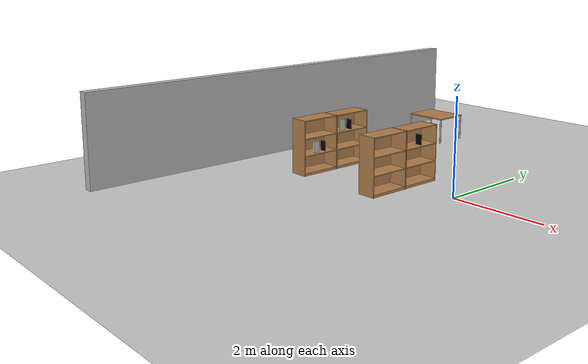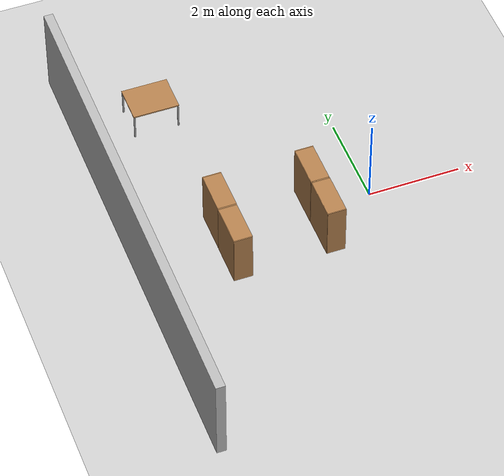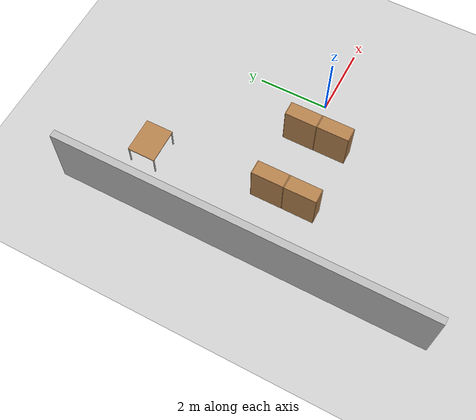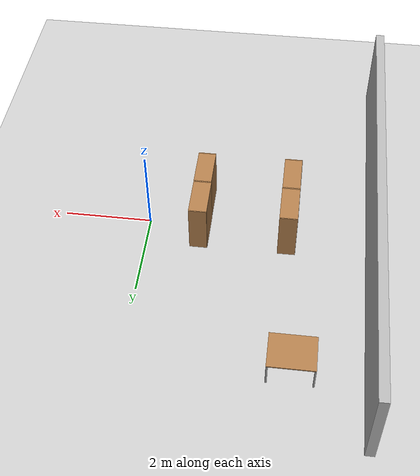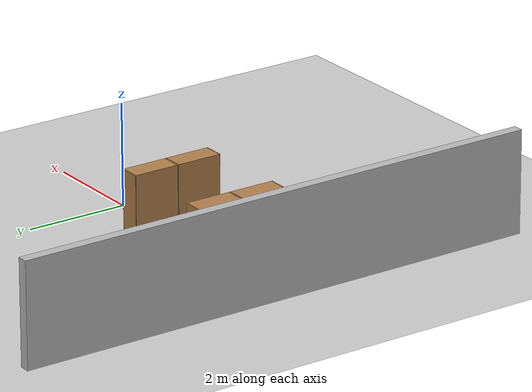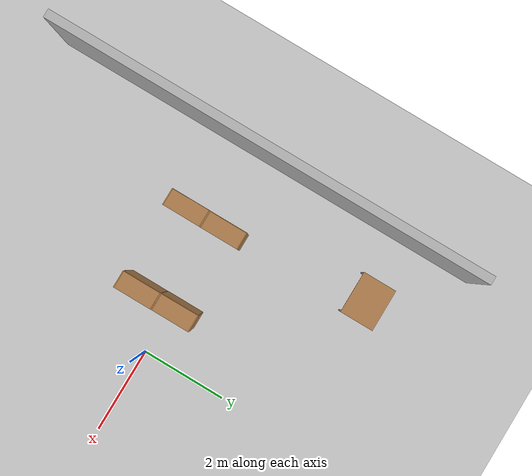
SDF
<sdf version="1.7">
 <world name="default">
  <model name="ground_plane">
   <static>1</static>
   <link name="link">
    <collision name="collision">
     <geometry><plane><normal>0 0 1</normal><size>100 100</size></plane></geometry>
     <surface><friction><ode><mu>100</mu><mu2>50</mu2></ode></friction></surface>
    </collision>
    <visual name="visual">
     <cast_shadows>0</cast_shadows>
     <geometry><plane><normal>0 0 1</normal><size>100 100</size></plane></geometry>
     <material>
      <script><uri>file://media/materials/scripts/gazebo.material</uri><name>Gazebo/Grey</name></script>
     </material>
    </visual>
   </link>
  </model>
  <model name="bookshelf_clone_0">
   <static>1</static>
   <link name="link">
    <inertial><mass>1</mass></inertial>
    <collision name="back">
     <pose>0 0.005 0.6 0 -0 0</pose>
     <geometry><box><size>0.9 0.01 1.2</size></box></geometry>
    </collision>
    <visual name="visual1">
     <pose>0 0.005 0.6 0 -0 0</pose>
     <geometry><box><size>0.9 0.01 1.2</size></box></geometry>
     <material>
      <script><uri>file://media/materials/scripts/gazebo.material</uri><name>Gazebo/Wood</name></script>
     </material>
    </visual>
    <collision name="left_side">
     <pose>0.45 -0.195 0.6 0 -0 0</pose>
     <geometry><box><size>0.02 0.4 1.2</size></box></geometry>
    </collision>
    <visual name="visual2">
     <pose>0.45 -0.195 0.6 0 -0 0</pose>
     <geometry><box><size>0.02 0.4 1.2</size></box></geometry>
     <material>
      <script><uri>file://media/materials/scripts/gazebo.material</uri><name>Gazebo/Wood</name></script>
     </material>
    </visual>
    <collision name="right_side">
     <pose>-0.45 -0.195 0.6 0 -0 0</pose>
     <geometry><box><size>0.02 0.4 1.2</size></box></geometry>
    </collision>
    <visual name="visual3">
     <pose>-0.45 -0.195 0.6 0 -0 0</pose>
     <geometry><box><size>0.02 0.4 1.2</size></box></geometry>
     <material>
      <script><uri>file://media/materials/scripts/gazebo.material</uri><name>Gazebo/Wood</name></script>
     </material>
    </visual>
    <collision name="bottom">
     <pose>0 -0.195 0.03 0 -0 0</pose>
     <geometry><box><size>0.88 0.4 0.06</size></box></geometry>
    </collision>
    <visual name="visual4">
     <pose>0 -0.195 0.03 0 -0 0</pose>
     <geometry><box><size>0.88 0.4 0.06</size></box></geometry>
     <material>
      <script><uri>file://media/materials/scripts/gazebo.material</uri><name>Gazebo/Wood</name></script>
     </material>
    </visual>
    <collision name="top">
     <pose>0 -0.195 1.19 0 -0 0</pose>
     <geometry><box><size>0.88 0.4 0.02</size></box></geometry>
    </collision>
    <visual name="visual5">
     <pose>0 -0.195 1.19 0 -0 0</pose>
     <geometry><box><size>0.88 0.4 0.02</size></box></geometry>
     <material>
      <script><uri>file://media/materials/scripts/gazebo.material</uri><name>Gazebo/Wood</name></script>
     </material>
    </visual>
    <collision name="low_shelf">
     <pose>0 -0.195 0.43 0 -0 0</pose>
     <geometry><box><size>0.88 0.4 0.02</size></box></geometry>
    </collision>
    <visual name="visual6">
     <pose>0 -0.195 0.43 0 -0 0</pose>
     <geometry><box><size>0.88 0.4 0.02</size></box></geometry>
     <material>
      <script><uri>file://media/materials/scripts/gazebo.material</uri><name>Gazebo/Wood</name></script>
     </material>
    </visual>
    <collision name="high_shelf">
     <pose>0 -0.195 0.8 0 -0 0</pose>
     <geometry><box><size>0.88 0.4 0.02</size></box></geometry>
    </collision>
    <visual name="visual7">
     <pose>0 -0.195 0.8 0 -0 0</pose>
     <geometry><box><size>0.88 0.4 0.02</size></box></geometry>
     <material>
      <script><uri>file://media/materials/scripts/gazebo.material</uri><name>Gazebo/Wood</name></script>
     </material>
    </visual>
   </link>
   <pose>-3.40087 -0.738465 0 0 -0 1.57111</pose>
  </model>
  <model name="bookshelf_clone_1">
   <static>1</static>
   <link name="link">
    <inertial><mass>1</mass></inertial>
    <collision name="back">
     <pose>0 0.005 0.6 0 -0 0</pose>
     <geometry><box><size>0.9 0.01 1.2</size></box></geometry>
    </collision>
    <visual name="visual1">
     <pose>0 0.005 0.6 0 -0 0</pose>
     <geometry><box><size>0.9 0.01 1.2</size></box></geometry>
     <material>
      <script><uri>file://media/materials/scripts/gazebo.material</uri><name>Gazebo/Wood</name></script>
     </material>
    </visual>
    <collision name="left_side">
     <pose>0.45 -0.195 0.6 0 -0 0</pose>
     <geometry><box><size>0.02 0.4 1.2</size></box></geometry>
    </collision>
    <visual name="visual2">
     <pose>0.45 -0.195 0.6 0 -0 0</pose>
     <geometry><box><size>0.02 0.4 1.2</size></box></geometry>
     <material>
      <script><uri>file://media/materials/scripts/gazebo.material</uri><name>Gazebo/Wood</name></script>
     </material>
    </visual>
    <collision name="right_side">
     <pose>-0.45 -0.195 0.6 0 -0 0</pose>
     <geometry><box><size>0.02 0.4 1.2</size></box></geometry>
    </collision>
    <visual name="visual3">
     <pose>-0.45 -0.195 0.6 0 -0 0</pose>
     <geometry><box><size>0.02 0.4 1.2</size></box></geometry>
     <material>
      <script><uri>file://media/materials/scripts/gazebo.material</uri><name>Gazebo/Wood</name></script>
     </material>
    </visual>
    <collision name="bottom">
     <pose>0 -0.195 0.03 0 -0 0</pose>
     <geometry><box><size>0.88 0.4 0.06</size></box></geometry>
    </collision>
    <visual name="visual4">
     <pose>0 -0.195 0.03 0 -0 0</pose>
     <geometry><box><size>0.88 0.4 0.06</size></box></geometry>
     <material>
      <script><uri>file://media/materials/scripts/gazebo.material</uri><name>Gazebo/Wood</name></script>
     </material>
    </visual>
    <collision name="top">
     <pose>0 -0.195 1.19 0 -0 0</pose>
     <geometry><box><size>0.88 0.4 0.02</size></box></geometry>
    </collision>
    <visual name="visual5">
     <pose>0 -0.195 1.19 0 -0 0</pose>
     <geometry><box><size>0.88 0.4 0.02</size></box></geometry>
     <material>
      <script><uri>file://media/materials/scripts/gazebo.material</uri><name>Gazebo/Wood</name></script>
     </material>
    </visual>
    <collision name="low_shelf">
     <pose>0 -0.195 0.43 0 -0 0</pose>
     <geometry><box><size>0.88 0.4 0.02</size></box></geometry>
    </collision>
    <visual name="visual6">
     <pose>0 -0.195 0.43 0 -0 0</pose>
     <geometry><box><size>0.88 0.4 0.02</size></box></geometry>
     <material>
      <script><uri>file://media/materials/scripts/gazebo.material</uri><name>Gazebo/Wood</name></script>
     </material>
    </visual>
    <collision name="high_shelf">
     <pose>0 -0.195 0.8 0 -0 0</pose>
     <geometry><box><size>0.88 0.4 0.02</size></box></geometry>
    </collision>
    <visual name="visual7">
     <pose>0 -0.195 0.8 0 -0 0</pose>
     <geometry><box><size>0.88 0.4 0.02</size></box></geometry>
     <material>
      <script><uri>file://media/materials/scripts/gazebo.material</uri><name>Gazebo/Wood</name></script>
     </material>
    </visual>
   </link>
   <pose>-3.39929 0.18163 0 0 -0 1.57111</pose>
  </model>
  <model name="bookshelf_clone_4">
   <static>1</static>
   <link name="link">
    <inertial><mass>1</mass></inertial>
    <collision name="back">
     <pose>0 0.005 0.6 0 -0 0</pose>
     <geometry><box><size>0.9 0.01 1.2</size></box></geometry>
    </collision>
    <visual name="visual1">
     <pose>0 0.005 0.6 0 -0 0</pose>
     <geometry><box><size>0.9 0.01 1.2</size></box></geometry>
     <material>
      <script><uri>file://media/materials/scripts/gazebo.material</uri><name>Gazebo/Wood</name></script>
     </material>
    </visual>
    <collision name="left_side">
     <pose>0.45 -0.195 0.6 0 -0 0</pose>
     <geometry><box><size>0.02 0.4 1.2</size></box></geometry>
    </collision>
    <visual name="visual2">
     <pose>0.45 -0.195 0.6 0 -0 0</pose>
     <geometry><box><size>0.02 0.4 1.2</size></box></geometry>
     <material>
      <script><uri>file://media/materials/scripts/gazebo.material</uri><name>Gazebo/Wood</name></script>
     </material>
    </visual>
    <collision name="right_side">
     <pose>-0.45 -0.195 0.6 0 -0 0</pose>
     <geometry><box><size>0.02 0.4 1.2</size></box></geometry>
    </collision>
    <visual name="visual3">
     <pose>-0.45 -0.195 0.6 0 -0 0</pose>
     <geometry><box><size>0.02 0.4 1.2</size></box></geometry>
     <material>
      <script><uri>file://media/materials/scripts/gazebo.material</uri><name>Gazebo/Wood</name></script>
     </material>
    </visual>
    <collision name="bottom">
     <pose>0 -0.195 0.03 0 -0 0</pose>
     <geometry><box><size>0.88 0.4 0.06</size></box></geometry>
    </collision>
    <visual name="visual4">
     <pose>0 -0.195 0.03 0 -0 0</pose>
     <geometry><box><size>0.88 0.4 0.06</size></box></geometry>
     <material>
      <script><uri>file://media/materials/scripts/gazebo.material</uri><name>Gazebo/Wood</name></script>
     </material>
    </visual>
    <collision name="top">
     <pose>0 -0.195 1.19 0 -0 0</pose>
     <geometry><box><size>0.88 0.4 0.02</size></box></geometry>
    </collision>
    <visual name="visual5">
     <pose>0 -0.195 1.19 0 -0 0</pose>
     <geometry><box><size>0.88 0.4 0.02</size></box></geometry>
     <material>
      <script><uri>file://media/materials/scripts/gazebo.material</uri><name>Gazebo/Wood</name></script>
     </material>
    </visual>
    <collision name="low_shelf">
     <pose>0 -0.195 0.43 0 -0 0</pose>
     <geometry><box><size>0.88 0.4 0.02</size></box></geometry>
    </collision>
    <visual name="visual6">
     <pose>0 -0.195 0.43 0 -0 0</pose>
     <geometry><box><size>0.88 0.4 0.02</size></box></geometry>
     <material>
      <script><uri>file://media/materials/scripts/gazebo.material</uri><name>Gazebo/Wood</name></script>
     </material>
    </visual>
    <collision name="high_shelf">
     <pose>0 -0.195 0.8 0 -0 0</pose>
     <geometry><box><size>0.88 0.4 0.02</size></box></geometry>
    </collision>
    <visual name="visual7">
     <pose>0 -0.195 0.8 0 -0 0</pose>
     <geometry><box><size>0.88 0.4 0.02</size></box></geometry>
     <material>
      <script><uri>file://media/materials/scripts/gazebo.material</uri><name>Gazebo/Wood</name></script>
     </material>
    </visual>
   </link>
   <pose>-1.39871 -0.721952 0 0 -0 1.57111</pose>
  </model>
  <model name="bookshelf_clone_5">
   <static>1</static>
   <link name="link">
    <inertial><mass>1</mass></inertial>
    <collision name="back">
     <pose>0 0.005 0.6 0 -0 0</pose>
     <geometry><box><size>0.9 0.01 1.2</size></box></geometry>
    </collision>
    <visual name="visual1">
     <pose>0 0.005 0.6 0 -0 0</pose>
     <geometry><box><size>0.9 0.01 1.2</size></box></geometry>
     <material>
      <script><uri>file://media/materials/scripts/gazebo.material</uri><name>Gazebo/Wood</name></script>
     </material>
    </visual>
    <collision name="left_side">
     <pose>0.45 -0.195 0.6 0 -0 0</pose>
     <geometry><box><size>0.02 0.4 1.2</size></box></geometry>
    </collision>
    <visual name="visual2">
     <pose>0.45 -0.195 0.6 0 -0 0</pose>
     <geometry><box><size>0.02 0.4 1.2</size></box></geometry>
     <material>
      <script><uri>file://media/materials/scripts/gazebo.material</uri><name>Gazebo/Wood</name></script>
     </material>
    </visual>
    <collision name="right_side">
     <pose>-0.45 -0.195 0.6 0 -0 0</pose>
     <geometry><box><size>0.02 0.4 1.2</size></box></geometry>
    </collision>
    <visual name="visual3">
     <pose>-0.45 -0.195 0.6 0 -0 0</pose>
     <geometry><box><size>0.02 0.4 1.2</size></box></geometry>
     <material>
      <script><uri>file://media/materials/scripts/gazebo.material</uri><name>Gazebo/Wood</name></script>
     </material>
    </visual>
    <collision name="bottom">
     <pose>0 -0.195 0.03 0 -0 0</pose>
     <geometry><box><size>0.88 0.4 0.06</size></box></geometry>
    </collision>
    <visual name="visual4">
     <pose>0 -0.195 0.03 0 -0 0</pose>
     <geometry><box><size>0.88 0.4 0.06</size></box></geometry>
     <material>
      <script><uri>file://media/materials/scripts/gazebo.material</uri><name>Gazebo/Wood</name></script>
     </material>
    </visual>
    <collision name="top">
     <pose>0 -0.195 1.19 0 -0 0</pose>
     <geometry><box><size>0.88 0.4 0.02</size></box></geometry>
    </collision>
    <visual name="visual5">
     <pose>0 -0.195 1.19 0 -0 0</pose>
     <geometry><box><size>0.88 0.4 0.02</size></box></geometry>
     <material>
      <script><uri>file://media/materials/scripts/gazebo.material</uri><name>Gazebo/Wood</name></script>
     </material>
    </visual>
    <collision name="low_shelf">
     <pose>0 -0.195 0.43 0 -0 0</pose>
     <geometry><box><size>0.88 0.4 0.02</size></box></geometry>
    </collision>
    <visual name="visual6">
     <pose>0 -0.195 0.43 0 -0 0</pose>
     <geometry><box><size>0.88 0.4 0.02</size></box></geometry>
     <material>
      <script><uri>file://media/materials/scripts/gazebo.material</uri><name>Gazebo/Wood</name></script>
     </material>
    </visual>
    <collision name="high_shelf">
     <pose>0 -0.195 0.8 0 -0 0</pose>
     <geometry><box><size>0.88 0.4 0.02</size></box></geometry>
    </collision>
    <visual name="visual7">
     <pose>0 -0.195 0.8 0 -0 0</pose>
     <geometry><box><size>0.88 0.4 0.02</size></box></geometry>
     <material>
      <script><uri>file://media/materials/scripts/gazebo.material</uri><name>Gazebo/Wood</name></script>
     </material>
    </visual>
   </link>
   <pose>-1.40262 0.198766 0 0 -0 1.57111</pose>
  </model>
  <model name="book_4">
   <link name="cover">
    <pose>0 -0.000108 0.01 0 -0 0</pose>
    <visual name="visual">
     <geometry><box><size>0.245 0.16 0.02</size></box></geometry>
     <material>
      <script>
       <uri>file:///home/bruno/Downloads/lib_world_models/book_4/materials/scripts</uri>
       <uri>file:///home/bruno/Downloads/lib_world_models/book_4/materials/textures</uri>
       <name>book_4</name>
      </script>
     </material>
     <cast_shadows>0</cast_shadows>
    </visual>
    <collision name="collision"><geometry><box><size>0.245 0.16 0.02</size></box></geometry></collision>
   </link>
   <link name="page">
    <pose>0 0.000608 0.01 0 -0 0</pose>
    <visual name="visual">
     <geometry><box><size>0.24502 0.15862 0.018</size></box></geometry>
     <material>
      <lighting>1</lighting>
      <ambient>1 1 1 1</ambient>
      <diffuse>1 1 1 1</diffuse>
      <specular>0.01 0.01 0.01 1</specular>
      <emissive>0 0 0 1</emissive>
      <shader type="vertex"><normal_map>__default__</normal_map></shader>
     </material>
     <cast_shadows>0</cast_shadows>
    </visual>
    <collision name="collision"><geometry><box><size>0.245 0.16 0.018</size></box></geometry></collision>
   </link>
   <static>1</static>
   <pose>-3.09743 -0.796842 0.571258 3.14159 -1.57034 -0.011661</pose>
  </model>
  <model name="book_5">
   <link name="cover">
    <pose>0 -0.000108 0.01 0 -0 0</pose>
    <visual name="visual">
     <geometry><box><size>0.245 0.16 0.02</size></box></geometry>
     <material>
      <script>
       <uri>file:///home/bruno/Downloads/lib_world_models/book_5/materials/scripts</uri>
       <uri>file:///home/bruno/Downloads/lib_world_models/book_5/materials/textures</uri>
       <name>book_5</name>
      </script>
     </material>
    </visual>
    <collision name="collision"><geometry><box><size>0.245 0.16 0.02</size></box></geometry></collision>
   </link>
   <link name="page">
    <pose>0 0.000608 0.01 0 -0 0</pose>
    <visual name="visual">
     <geometry><box><size>0.24502 0.15862 0.018</size></box></geometry>
     <material>
      <lighting>1</lighting>
      <ambient>1 1 1 1</ambient>
      <diffuse>1 1 1 1</diffuse>
      <specular>0.01 0.01 0.01 1</specular>
      <emissive>0 0 0 1</emissive>
      <shader type="vertex"><normal_map>__default__</normal_map></shader>
     </material>
    </visual>
    <collision name="collision"><geometry><box><size>0.245 0.16 0.018</size></box></geometry></collision>
   </link>
   <static>1</static>
   <pose>-3.12291 -0.028486 0.931195 0 -1.5696 3.13172</pose>
  </model>
  <model name="table">
   <static>1</static>
   <link name="link">
    <collision name="surface">
     <pose>0 0 0.6 0 -0 0</pose>
     <geometry><box><size>1 0.8 0.03</size></box></geometry>
    </collision>
    <visual name="visual1">
     <pose>0 0 0.6 0 -0 0</pose>
     <geometry><box><size>1 0.8 0.03</size></box></geometry>
     <material>
      <script><uri>file://media/materials/scripts/gazebo.material</uri><name>Gazebo/Wood</name></script>
     </material>
    </visual>
    <collision name="front_left_leg">
     <pose>0.48 0.38 0.3 0 -0 0</pose>
     <geometry><cylinder><radius>0.02</radius><length>0.6</length></cylinder></geometry>
    </collision>
    <visual name="front_left_leg">
     <pose>0.48 0.38 0.3 0 -0 0</pose>
     <geometry><cylinder><radius>0.02</radius><length>0.6</length></cylinder></geometry>
     <material>
      <script><uri>file://media/materials/scripts/gazebo.material</uri><name>Gazebo/Grey</name></script>
     </material>
    </visual>
    <collision name="front_right_leg">
     <pose>0.48 -0.38 0.3 0 -0 0</pose>
     <geometry><cylinder><radius>0.02</radius><length>0.6</length></cylinder></geometry>
    </collision>
    <visual name="front_right_leg">
     <pose>0.48 -0.38 0.3 0 -0 0</pose>
     <geometry><cylinder><radius>0.02</radius><length>0.6</length></cylinder></geometry>
     <material>
      <script><uri>file://media/materials/scripts/gazebo.material</uri><name>Gazebo/Grey</name></script>
     </material>
    </visual>
    <collision name="back_right_leg">
     <pose>-0.48 -0.38 0.3 0 -0 0</pose>
     <geometry><cylinder><radius>0.02</radius><length>0.6</length></cylinder></geometry>
    </collision>
    <visual name="back_right_leg">
     <pose>-0.48 -0.38 0.3 0 -0 0</pose>
     <geometry><cylinder><radius>0.02</radius><length>0.6</length></cylinder></geometry>
     <material>
      <script><uri>file://media/materials/scripts/gazebo.material</uri><name>Gazebo/Grey</name></script>
     </material>
    </visual>
    <collision name="back_left_leg">
     <pose>-0.48 0.38 0.3 0 -0 0</pose>
     <geometry><cylinder><radius>0.02</radius><length>0.6</length></cylinder></geometry>
    </collision>
    <visual name="back_left_leg">
     <pose>-0.48 0.38 0.3 0 -0 0</pose>
     <geometry><cylinder><radius>0.02</radius><length>0.6</length></cylinder></geometry>
     <material>
      <script><uri>file://media/materials/scripts/gazebo.material</uri><name>Gazebo/Grey</name></script>
     </material>
    </visual>
    <velocity_decay><linear>0</linear><angular>0</angular></velocity_decay>
   </link>
   <pose>-3.50144 3.61049 0 0 -0 0</pose>
  </model>
  <model name="wall_4_model_clone">
   <pose>-5.09859 0.133784 1 0 -0 0</pose>
   <static>1</static>
   <link name="wall_4_body">
    <inertial>
     <mass>1</mass>
     <inertia><ixx>1</ixx><ixy>0</ixy><ixz>0</ixz><iyy>1</iyy><iyz>0</iyz><izz>1</izz></inertia>
    </inertial>
    <collision name="collision"><geometry><box><size>0.2 10.4438 2</size></box></geometry></collision>
    <visual name="visual"><geometry><box><size>0.2 10.4438 2</size></box></geometry></visual>
   </link>
  </model>
  <model name="retry_6">
   <link name="link">
    <inertial>
     <mass>0.1</mass>
     <inertia>
      <ixx>0.00037145</ixx>
      <ixy>0</ixy>
      <ixz>0</ixz>
      <iyy>0.00019446</iyy>
      <iyz>0</iyz>
      <izz>0.00056106</izz>
     </inertia>
    </inertial>
    <visual name="visual">
     <geometry><box><size>0.151804 0.220309 0.017052</size></box></geometry>
     <material>
      <shader type="pixel"><normal_map>__default__</normal_map></shader>
      <script><name>ModelPreview_7::link::visual_MATERIAL_</name><uri>__default__</uri></script>
      <ambient>0 0 0 1</ambient>
      <diffuse>0 0 0 1</diffuse>
      <specular>0 0 0 1</specular>
      <emissive>0 0 0 1</emissive>
     </material>
    </visual>
    <collision name="collision">
     <geometry><box><size>0.151804 0.220309 0.017052</size></box></geometry>
     <surface>
      <friction>
       <ode><mu>3.5</mu><mu2>3.5</mu2><fdir1>0 0 0</fdir1><slip1>-0</slip1><slip2>-0</slip2></ode>
       <torsional>
        <coefficient>1</coefficient>
        <patch_radius>0</patch_radius>
        <surface_radius>0</surface_radius>
        <use_patch_radius>1</use_patch_radius>
        <ode><slip>0</slip></ode>
       </torsional>
      </friction>
      <bounce><restitution_coefficient>0</restitution_coefficient><threshold>1e+06</threshold></bounce>
      <contact>
       <collide_without_contact>0</collide_without_contact>
       <collide_without_contact_bitmask>1</collide_without_contact_bitmask>
       <collide_bitmask>1</collide_bitmask>
       <ode>
        <soft_cfm>0</soft_cfm>
        <soft_erp>0.2</soft_erp>
        <kp>1e+13</kp>
        <kd>1</kd>
        <max_vel>0.01</max_vel>
        <min_depth>0</min_depth>
       </ode>
       <bullet>
        <split_impulse>1</split_impulse>
        <split_impulse_penetration_threshold>-0.01</split_impulse_penetration_threshold>
        <soft_cfm>0</soft_cfm>
        <soft_erp>0.2</soft_erp>
        <kp>1e+13</kp>
        <kd>1</kd>
       </bullet>
      </contact>
     </surface>
    </collision>
   </link>
   <static>0</static>
   <pose>-3.13598 0.208987 0.920155 -1.57079 -1.1e-05 0.000102</pose>
  </model>
  <model name="retry_6_clone_2">
   <link name="link">
    <inertial>
     <mass>0.1</mass>
     <inertia>
      <ixx>0.00037145</ixx>
      <ixy>0</ixy>
      <ixz>0</ixz>
      <iyy>0.00019446</iyy>
      <iyz>0</iyz>
      <izz>0.00056106</izz>
     </inertia>
    </inertial>
    <visual name="visual">
     <geometry><box><size>0.151804 0.220309 0.017052</size></box></geometry>
     <material>
      <shader type="pixel"><normal_map>__default__</normal_map></shader>
      <script><name>ModelPreview_7::link::visual_MATERIAL_</name><uri>__default__</uri></script>
      <ambient>0 0 0 1</ambient>
      <diffuse>0 0 0 1</diffuse>
      <specular>0 0 0 1</specular>
      <emissive>0 0 0 1</emissive>
     </material>
    </visual>
    <collision name="collision">
     <geometry><box><size>0.151804 0.220309 0.017052</size></box></geometry>
     <surface>
      <friction>
       <ode><mu>3.5</mu><mu2>3.5</mu2><fdir1>0 0 0</fdir1><slip1>-0</slip1><slip2>-0</slip2></ode>
       <torsional>
        <coefficient>1</coefficient>
        <patch_radius>0</patch_radius>
        <surface_radius>0</surface_radius>
        <use_patch_radius>1</use_patch_radius>
        <ode><slip>0</slip></ode>
       </torsional>
      </friction>
      <bounce><restitution_coefficient>0</restitution_coefficient><threshold>1e+06</threshold></bounce>
      <contact>
       <collide_without_contact>0</collide_without_contact>
       <collide_without_contact_bitmask>1</collide_without_contact_bitmask>
       <collide_bitmask>1</collide_bitmask>
       <ode>
        <soft_cfm>0</soft_cfm>
        <soft_erp>0.2</soft_erp>
        <kp>1e+13</kp>
        <kd>1</kd>
        <max_vel>0.01</max_vel>
        <min_depth>0</min_depth>
       </ode>
       <bullet>
        <split_impulse>1</split_impulse>
        <split_impulse_penetration_threshold>-0.01</split_impulse_penetration_threshold>
        <soft_cfm>0</soft_cfm>
        <soft_erp>0.2</soft_erp>
        <kp>1e+13</kp>
        <kd>1</kd>
       </bullet>
      </contact>
     </surface>
    </collision>
   </link>
   <static>0</static>
   <pose>-1.15136 0.271562 0.920155 -1.57079 -1.1e-05 0.000107</pose>
  </model>
  <model name="retry_6_clone_5_clone_0">
   <link name="link">
    <inertial>
     <mass>0.1</mass>
     <inertia>
      <ixx>0.00037145</ixx>
      <ixy>0</ixy>
      <ixz>0</ixz>
      <iyy>0.00019446</iyy>
      <iyz>0</iyz>
      <izz>0.00056106</izz>
     </inertia>
    </inertial>
    <visual name="visual">
     <geometry><box><size>0.151804 0.220309 0.017052</size></box></geometry>
     <material>
      <shader type="pixel"><normal_map>__default__</normal_map></shader>
      <script><name>ModelPreview_7::link::visual_MATERIAL_</name><uri>__default__</uri></script>
      <ambient>0 0 0 1</ambient>
      <diffuse>0 0 0 1</diffuse>
      <specular>0 0 0 1</specular>
      <emissive>0 0 0 1</emissive>
     </material>
    </visual>
    <collision name="collision">
     <geometry><box><size>0.151804 0.220309 0.017052</size></box></geometry>
     <surface>
      <friction>
       <ode><mu>3.5</mu><mu2>3.5</mu2><fdir1>0 0 0</fdir1><slip1>-0</slip1><slip2>-0</slip2></ode>
       <torsional>
        <coefficient>1</coefficient>
        <patch_radius>0</patch_radius>
        <surface_radius>0</surface_radius>
        <use_patch_radius>1</use_patch_radius>
        <ode><slip>0</slip></ode>
       </torsional>
      </friction>
      <bounce><restitution_coefficient>0</restitution_coefficient><threshold>1e+06</threshold></bounce>
      <contact>
       <collide_without_contact>0</collide_without_contact>
       <collide_without_contact_bitmask>1</collide_without_contact_bitmask>
       <collide_bitmask>1</collide_bitmask>
       <ode>
        <soft_cfm>0</soft_cfm>
        <soft_erp>0.2</soft_erp>
        <kp>1e+13</kp>
        <kd>1</kd>
        <max_vel>0.01</max_vel>
        <min_depth>0</min_depth>
       </ode>
       <bullet>
        <split_impulse>1</split_impulse>
        <split_impulse_penetration_threshold>-0.01</split_impulse_penetration_threshold>
        <soft_cfm>0</soft_cfm>
        <soft_erp>0.2</soft_erp>
        <kp>1e+13</kp>
        <kd>1</kd>
       </bullet>
      </contact>
     </surface>
    </collision>
   </link>
   <static>0</static>
   <pose>-3.14417 -0.555405 0.550154 -1.5708 1.1e-05 9.6e-05</pose>
  </model>
 </world>
</sdf>
